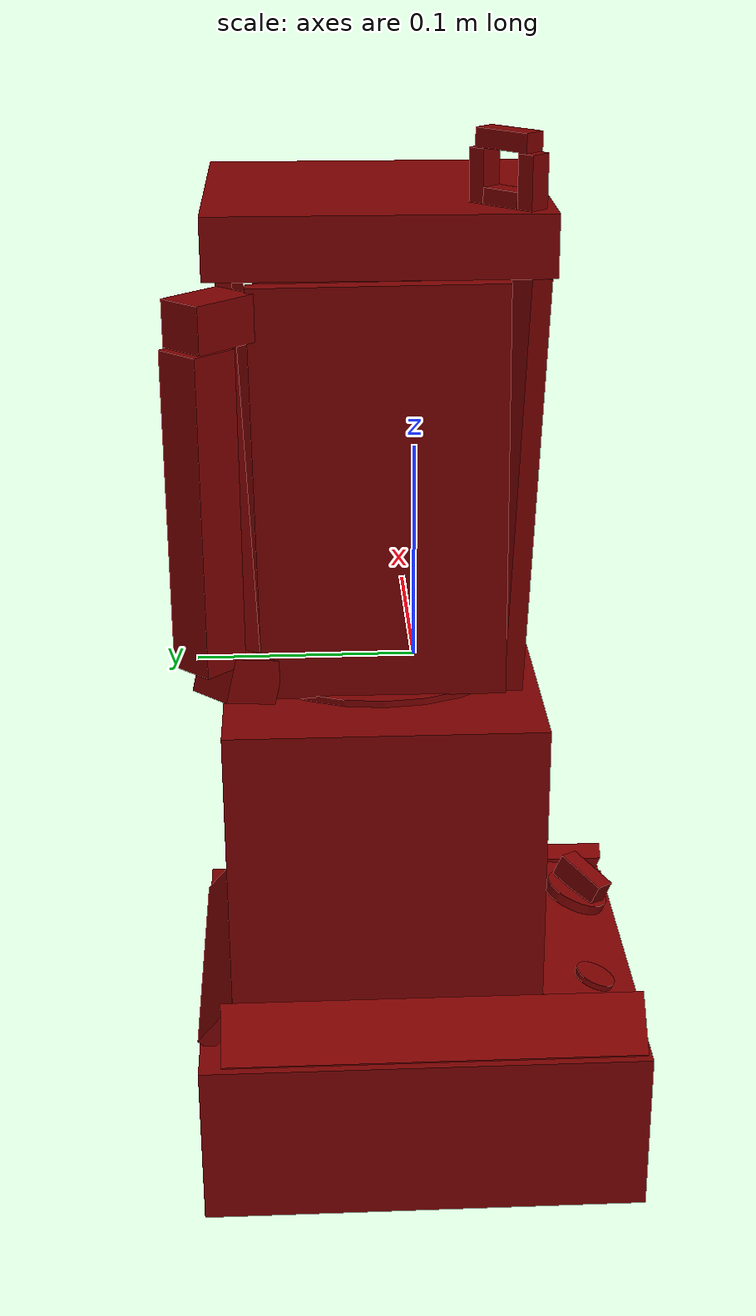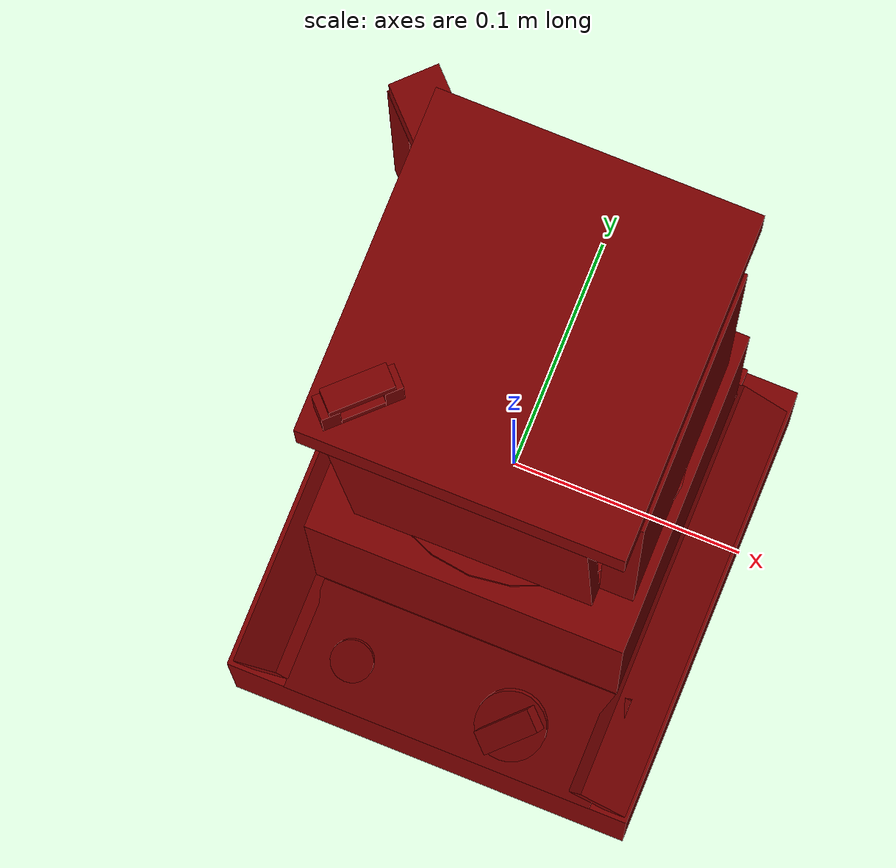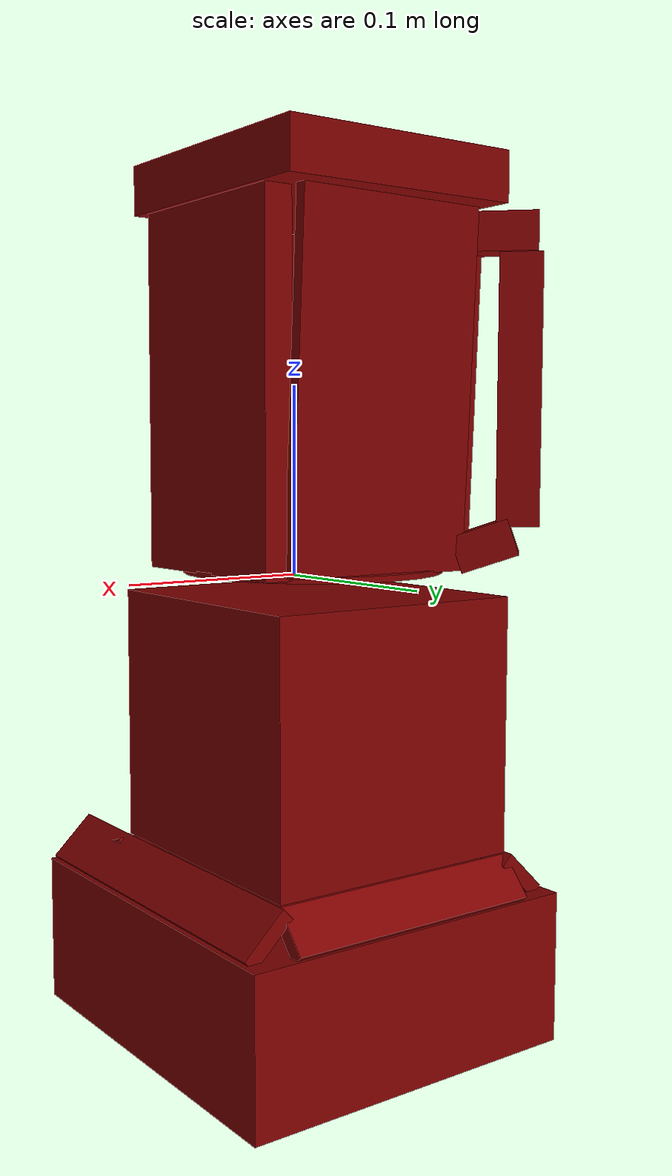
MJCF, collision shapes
<?xml version='1.0' encoding='UTF-8'?>
<mujoco model="model">
  <option timestep="0.002" gravity="0.0 0.0 -9.81"/>
  <compiler angle="radian"/>
  <asset>
    <mesh file="visuals/Blade001.obj" name="Blade001_vis"/>
    <mesh file="visuals/Body001.obj" name="Body001_vis"/>
    <mesh file="visuals/Button001.obj" name="Button001_vis"/>
    <mesh file="visuals/Jug001.obj" name="Jug001_vis"/>
    <mesh file="visuals/Jug001_Clear.obj" name="Jug001_Clear_vis"/>
    <mesh file="visuals/Knob001.obj" name="Knob001_vis"/>
    <mesh file="visuals/Lid001.obj" name="Lid001_vis"/>
    <texture file="visuals/T_BC001.png" name="Body001_material" type="2d"/>
    <material name="Body001_material" rgba="1 1 1 1.0" texture="Body001_material" shininess="0.7700482308864594" specular="3"/>
    <texture file="visuals/T_BC001.png" name="Button001_material" type="2d"/>
    <material name="Button001_material" rgba="1 1 1 1.0" texture="Button001_material" shininess="0.7700482308864594" specular="3"/>
    <texture file="visuals/T_BC001.png" name="Jug001_material" type="2d"/>
    <material name="Jug001_material" rgba="1 1 1 1.0" texture="Jug001_material" shininess="0.7700482308864594" specular="3"/>
    <texture file="visuals/T_BC001.png" name="Blade001_material" type="2d"/>
    <material name="Blade001_material" rgba="1 1 1 1.0" texture="Blade001_material" shininess="0.7700482308864594" specular="3"/>
    <texture file="visuals/T_BC001.png" name="Jug001_Clear_material" type="2d"/>
    <material name="Jug001_Clear_material" rgba="1 1 1 0.800000011920929" texture="Jug001_Clear_material" shininess="0.7700482308864594" specular="3"/>
    <texture file="visuals/T_BC001.png" name="Lid001_material" type="2d"/>
    <material name="Lid001_material" rgba="1 1 1 1.0" texture="Lid001_material" shininess="0.7700482308864594" specular="3"/>
    <texture file="visuals/T_BC001.png" name="Knob001_material" type="2d"/>
    <material name="Knob001_material" rgba="1 1 1 1.0" texture="Knob001_material" shininess="0.7700482308864594" specular="3"/>
  </asset>
  <default>
    <default class="visual">
      <geom conaffinity="0" contype="0" group="1" type="mesh"/>
    </default>
    <default class="collision">
      <geom group="0" rgba="0.5 0 0 0.5"/>
    </default>
    <default class="spawn">
      <geom group="0" rgba="1 1 1 0.5" contype="0" conaffinity="0"/>
      <site group="0" rgba="1 1 1 0.5"/>
    </default>
    <default class="region">
      <geom group="1" conaffinity="0" contype="0" rgba="0 1 0 0"/>
    </default>
  </default>
  <worldbody>
    <body>
      <body name="object">
        <geom mesh="Body001_vis" type="mesh" solimp="0.998 0.998 0.001" solref="0.001 1" friction="0.95 0.3 0.1" class="visual" material="Body001_material"/>
        <geom class="collision" type="box" pos="0.00009838 -0.00092468 -0.20532855" size="0.09544695913791656 0.10426949709653854 0.0402303971350193" quat="1.0 0.0 0.0 0.0"/>
        <geom class="collision" type="box" pos="-0.00040561 0.01592932 -0.07566397" size="0.07126396149396896 0.07182466983795166 0.067325659096241" quat="1.0 0.0 0.0 0.0"/>
        <geom class="collision" type="box" pos="-0.07966139 -0.00496216 -0.15581570" size="0.00402027927339077 0.09815406799316406 0.014873117208480835" quat="0.9202430248260498 -2.683670368653561e-16 0.39134737849235535 5.258097957039354e-08"/>
        <geom class="collision" type="box" pos="0.08065451 -0.00496216 -0.15581570" size="0.00402027927339077 0.09815406799316406 0.014873117208480835" quat="0.9202430248260498 -3.5377271248647306e-15 -0.39134737849235535 -5.258097957039354e-08"/>
        <geom class="collision" type="box" pos="-0.00071108 0.09315052 -0.15572787" size="0.00402027927339077 0.07176673412322998 0.01249531377106905" quat="0.6628537774085999 0.24622128903865814 -0.24622133374214172 0.6628536581993103"/>
        <geom class="collision" type="box" pos="0.00512743 -0.07963913 -0.15684181" size="0.003384337294846773 0.07289834320545197 0.026366258040070534" quat="0.5791575908660889 -0.405680388212204 -0.40568044781684875 -0.5791574120521545"/>
        <body name="Button001">
          <joint axis="0.0 0.3528802990913391 -0.9356685280799866" pos="-0.04315654 -0.08408132 -0.15236295" limited="true" name="Button001_joint" range="0.0 0.003" type="slide" damping="1" frictionloss="1" armature=".01" stiffness="0.05" springref="-1"/>
          <geom mesh="Button001_vis" type="mesh" solimp="0.998 0.998 0.001" solref="0.001 1" friction="0.95 0.3 0.1" class="visual" material="Button001_material"/>
          <geom class="collision" type="cylinder" pos="-0.04316494 -0.08455940 -0.15175871" size="0.00983891449868679 0.0014325517695397139" quat="0.9826168417930603 0.18564505875110626 -4.122158629706957e-17 8.553523343141899e-24"/>
        </body>
        <body name="Jug001">
          <joint axis="0.0 0.0 1.0" pos="-0.01765766 0.03446043 0.09020954" limited="true" name="Jug001_joint" range="0.0 0.1" type="slide" damping="1" frictionloss="1" armature=".01" stiffness="0.05"/>
          <geom mesh="Jug001_vis" type="mesh" solimp="0.998 0.998 0.001" solref="0.001 1" friction="0.95 0.3 0.1" class="visual" material="Jug001_material"/>
          <geom class="collision" type="box" pos="0.00162357 0.07611021 0.09621255" size="0.05276477709412575 0.003327916609123349 0.09030888229608536" quat="0.9997764825820923 -0.02008601650595665 -0.005285521969199181 -0.003948627971112728"/>
          <geom class="collision" type="box" pos="-0.00154144 -0.04420170 0.09554361" size="0.05276710167527199 0.004131825175136328 0.09101178497076035" quat="0.9997565746307373 0.021339016035199165 -0.004932234529405832 0.002672158880159259"/>
          <geom class="collision" type="box" pos="-0.05997258 0.01734943 0.09614745" size="0.05306067690253258 0.00356504344381392 0.09038258343935013" quat="0.7040438652038574 0.009124255739152431 -0.01638084463775158 -0.7099089026451111"/>
          <geom class="collision" type="box" pos="0.05966715 0.01735006 0.09620867" size="0.007471128832548857 0.053433459252119064 0.09090543538331985" quat="1.0 0.0 0.0 0.0"/>
          <geom class="collision" type="box" pos="-0.07454942 0.09080298 0.09596016" size="0.010457104071974754 0.010834897868335247 0.06791377812623978" quat="0.9236152768135071 0.0 0.0 0.38332080841064453"/>
          <geom class="collision" type="box" pos="-0.06971362 0.08598051 0.17408676" size="0.010457104071974754 0.015109619125723839 0.009672882035374641" quat="0.9236152768135071 0.0 0.0 0.38332080841064453"/>
          <geom class="collision" type="box" pos="-0.06300519 0.07929057 0.01803024" size="0.010457104071974754 0.015109619125723839 0.009672882035374641" quat="0.9112091660499573 0.15087415277957916 0.06261612474918365 0.37817203998565674"/>
          <geom class="collision" type="cylinder" pos="0.00034438 0.01651172 0.00483546" size="0.06772742420434952 0.0015224376693367958" quat="1.0 0.0 0.0 0.0"/>
          <body name="Blade001">
            <joint axis="0.0 0.0 1.0" pos="-0.00002514 0.01631620 0.01788345" limited="false" name="Blade001_joint" range="0 360" type="hinge" damping="1" frictionloss="1" armature=".01" stiffness="0.05"/>
            <geom mesh="Blade001_vis" type="mesh" solimp="0.998 0.998 0.001" solref="0.001 1" friction="0.95 0.3 0.1" class="visual" material="Blade001_material"/>
            <geom class="collision" type="box" pos="-0.00000500 0.01627119 0.00861587" size="0.006796702742576599 0.006033340003341436 0.008870548568665981" quat="1.0 0.0 0.0 0.0"/>
            <geom class="collision" type="box" pos="-0.00000500 0.04103009 0.00786441" size="0.006796702742576599 0.01402504462748766 0.001738610677421093" quat="0.9905418157577515 0.13721103966236115 -3.046707035485529e-17 -2.124275213939218e-25"/>
            <geom class="collision" type="box" pos="-0.00005982 0.02464923 0.00445387" size="0.006735978182405233 0.0023647986818104982 0.0017699705203995109" quat="1.0 0.0 0.0 0.0"/>
            <geom class="collision" type="box" pos="-0.00001141 0.05511524 0.01580161" size="0.005444969050586224 0.001163806882686913 0.002927056048065424" quat="1.0 0.0 0.0 0.0"/>
            <geom class="collision" type="box" pos="-0.00001141 -0.02262257 0.01580161" size="0.005444969050586224 0.0011247117072343826 0.0029121816623955965" quat="0.9999773502349854 -0.006730015855282545 -1.4943602996053826e-18 1.4475655789297327e-24"/>
            <geom class="collision" type="box" pos="-0.00005982 0.00784345 0.00445387" size="0.006735978182405233 0.0023416096810251474 0.0017386107938364148" quat="0.9999773502349854 -0.006730015855282545 -1.4943602996053826e-18 1.4475655789297327e-24"/>
            <geom class="collision" type="box" pos="-0.00000500 -0.00853742 0.00786441" size="0.006796702742576599 0.01402504462748766 0.001738610677421093" quat="0.9905418157577515 -0.13721103966236115 -3.046707035485529e-17 -1.0166080067867125e-24"/>
            <geom class="collision" type="box" pos="-0.01777174 0.01702153 0.01931523" size="0.0015928685897961259 0.005283007398247719 0.012411748059093952" quat="0.9287297129631042 -5.471797459577488e-10 -0.370757520198822 -4.8397581053905014e-08"/>
            <geom class="collision" type="box" pos="0.01749905 0.01553993 0.01931523" size="0.001592868473380804 0.005283007398247719 0.012411747127771378" quat="0.9287297129631042 -5.472026720632073e-10 0.37075743079185486 4.839776579501631e-08"/>
            <geom class="collision" type="box" pos="-0.00088261 0.00442632 0.02372427" size="0.0009584952495060861 0.005283007398247719 0.012411748059093952" quat="0.703269898891449 0.07356300204992294 0.07356306165456772 -0.7032698392868042"/>
            <geom class="collision" type="box" pos="0.00083358 0.02796458 0.02372427" size="0.0009584952495060861 0.005283007398247719 0.012411748059093952" quat="0.703269898891449 -0.07356300950050354 0.07356306165456772 0.7032698392868042"/>
          </body>
          <body name="Jug001_Clear">
            <geom class="region" name="reg_int" type="box" pos="0.006707300000000003 0.011038449999999998 0.111058585" size="0.04573877 0.0448324 0.07388575500000001"/>
            <geom mesh="Jug001_Clear_vis" type="mesh" solimp="0.998 0.998 0.001" solref="0.001 1" friction="0.95 0.3 0.1" class="visual" material="Jug001_Clear_material"/>
            <geom class="collision" type="box" pos="0.00162357 0.07611021 0.09621255" size="0.05276477709412575 0.003327916609123349 0.09030888229608536" quat="0.9997764825820923 -0.02008601650595665 -0.005285521969199181 -0.003948627971112728"/>
            <geom class="collision" type="box" pos="-0.00154144 -0.04420170 0.09554361" size="0.05276710167527199 0.004131825175136328 0.09101178497076035" quat="0.9997565746307373 0.021339016035199165 -0.004932234529405832 0.002672158880159259"/>
            <geom class="collision" type="box" pos="-0.05997258 0.01734943 0.09614745" size="0.05306067690253258 0.00356504344381392 0.09038258343935013" quat="0.7040438652038574 0.009124255739152431 -0.01638084463775158 -0.7099089026451111"/>
            <geom class="collision" type="box" pos="0.05966715 0.01735006 0.09620867" size="0.007471128832548857 0.053433459252119064 0.09090543538331985" quat="1.0 0.0 0.0 0.0"/>
            <geom class="collision" type="box" pos="-0.07454942 0.09080298 0.09596016" size="0.010457104071974754 0.010834897868335247 0.06791377812623978" quat="0.9236152768135071 0.0 0.0 0.38332080841064453"/>
            <geom class="collision" type="box" pos="-0.06971362 0.08598051 0.17408676" size="0.010457104071974754 0.015109619125723839 0.009672882035374641" quat="0.9236152768135071 0.0 0.0 0.38332080841064453"/>
            <geom class="collision" type="box" pos="-0.06300519 0.07929057 0.01803024" size="0.010457104071974754 0.015109619125723839 0.009672882035374641" quat="0.9112091660499573 0.15087415277957916 0.06261612474918365 0.37817203998565674"/>
          </body>
          <body name="Lid001">
            <joint axis="0.0 0.0 1.0" pos="-0.00041562 0.01784508 0.21548829" limited="true" name="Lid001_joint" range="0.0 0.1" type="slide" damping="1" frictionloss="1" armature=".01" stiffness="0.05"/>
            <geom mesh="Lid001_vis" type="mesh" solimp="0.998 0.998 0.001" solref="0.001 1" friction="0.95 0.3 0.1" class="visual" material="Lid001_material"/>
            <geom class="collision" type="box" pos="-0.00075989 0.01757277 0.20130653" size="0.0665302500128746 0.07075388729572296 0.012819948606193066" quat="1.0 0.0 0.0 0.0"/>
            <geom class="collision" type="box" pos="-0.03936722 -0.02548668 0.22488249" size="0.0037440641317516565 0.004916483070701361 0.010853731073439121" quat="0.9270315766334534 0.0 0.0 0.3749832808971405"/>
            <geom class="collision" type="box" pos="-0.05756285 -0.04308658 0.22488249" size="0.0037440641317516565 0.004916483070701361 0.010853731073439121" quat="0.9270315766334534 0.0 0.0 0.3749832808971405"/>
            <geom class="collision" type="box" pos="-0.04840749 -0.03423097 0.21741696" size="0.008867119438946247 0.004916483070701361 0.003388203214854002" quat="0.9270315766334534 0.0 0.0 0.3749832808971405"/>
            <geom class="collision" type="box" pos="-0.04836400 -0.03418890 0.23990821" size="0.01324789971113205 0.004916483070701361 0.003862414974719286" quat="0.9270315766334534 0.0 0.0 0.3749832808971405"/>
          </body>
        </body>
        <body name="Knob001">
          <joint axis="0.0 0.3454406261444092 -0.9384405612945557" pos="0.03268874 -0.08703924 -0.14453773" limited="true" name="Knob001_joint" range="0.0 4.71238898038469" type="hinge" damping="0.05" armature="0.001"/>
          <geom mesh="Knob001_vis" type="mesh" solimp="0.998 0.998 0.001" solref="0.001 1" friction="0.95 0.3 0.1" class="visual" material="Knob001_material"/>
          <geom class="collision" type="cylinder" pos="0.03265166 -0.08532186 -0.14933652" size="0.01615726202726364 0.0025616271886974573" quat="0.9826064705848694 0.18524746596813202 0.004521556198596954 0.012144519947469234" density="0.001"/>
          <geom class="collision" type="box" pos="0.03301833 -0.08862654 -0.14106137" size="0.013275418430566788 0.005633893422782421 0.006007363088428974" quat="0.9084489941596985 0.14288212358951569 -0.1322166621685028 0.3698970377445221" density="0.001"/>
        </body>
        <geom class="region" name="reg_main" type="box" pos="2.0500000000311935e-07 -0.0013341800000000043 -1.7000000000766402e-07" size="0.096558955 0.10405454 0.24610969"/>
      </body>
    </body>
  </worldbody>
  <actuator>
    <motor name="Button001_joint_actuator" joint="Button001_joint" gear="0.5"/>
    <motor name="Jug001_joint_actuator" joint="Jug001_joint" gear="0.5"/>
    <motor name="Knob001_joint_actuator" joint="Knob001_joint" gear="0.5"/>
    <motor name="Blade001_joint_actuator" joint="Blade001_joint" gear="20"/>
    <motor name="Lid001_joint_actuator" joint="Lid001_joint" gear="0.5"/>
  </actuator>
</mujoco>
